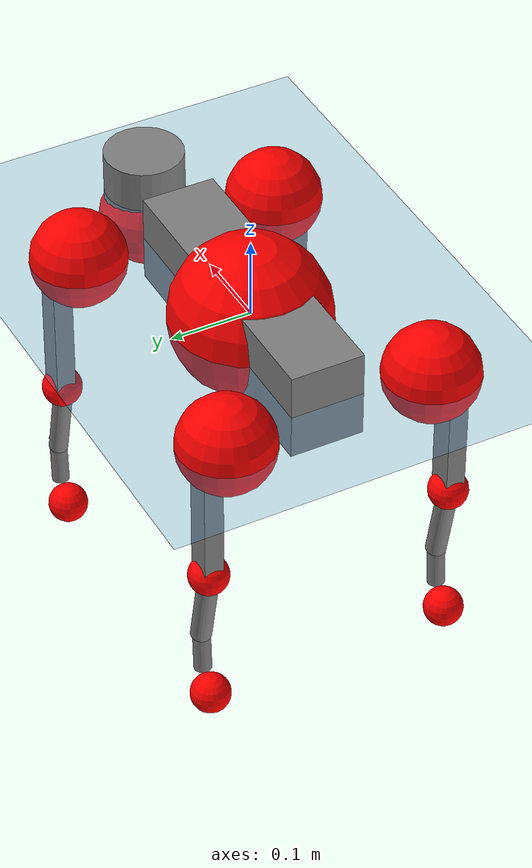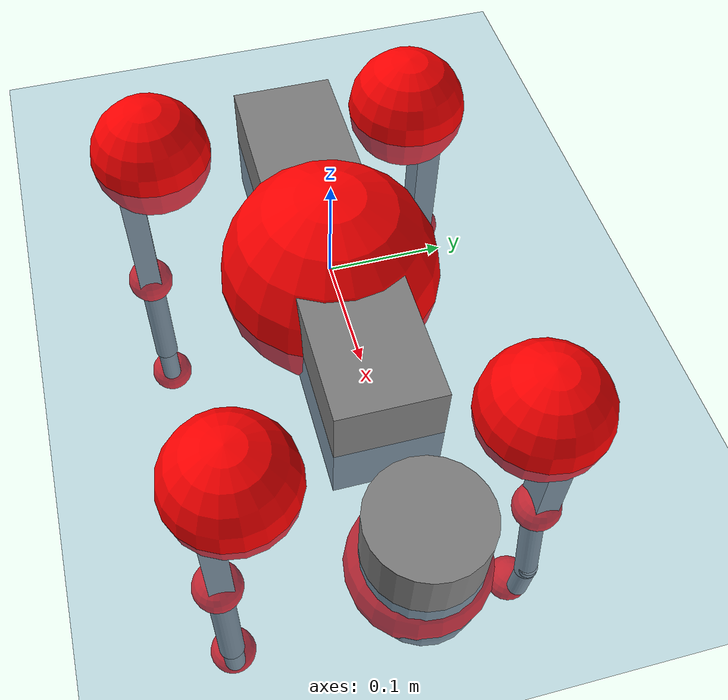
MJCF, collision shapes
<mujoco model="go2">
  <compiler angle="radian" assetdir="assets" balanceinertia="true" inertiafromgeom="false"/>

  <option timestep="0.005" density="1.2" viscosity="2e-05"/>

  <size nkey="1"/>

  <visual>
    <quality shadowsize="8192"/>
    <map shadowclip="0.5"/>
  </visual>

  <default>
    <default class="/">
      <geom contype="0" conaffinity="0" group="1" solref="-1000 -80"/>
      <site size="0.01 0.005 0.005" group="5"/>
      <general forcelimited="true" biastype="affine" gainprm="20" biasprm="0 -20 -0.5"/>
      <default class="go2">
        <joint armature="0.01" damping="0.01" frictionloss="0.2"/>
        <geom condim="1" margin="0.001"/>
        <default class="visual">
          <geom type="mesh" group="2"/>
        </default>
        <default class="collision">
          <geom group="3"/>
          <default class="foot">
            <geom size="0.022 0 0" condim="6" priority="1" friction="0.8 0.02 0.01" solimp="0.015 1 0.022"/>
          </default>
        </default>
        <default class="reward_collision_sphere">
          <geom group="5" rgba="1 0 0 1"/>
        </default>
      </default>
    </default>
  </default>

  <asset>
    <texture type="skybox" colorspace="auto" name="//unnamed_texture_0" builtin="gradient" rgb1="0.95 0.95 0.95" rgb2="0.95 0.95 0.95" width="100" height="600"/>
    <texture type="2d" colorspace="auto" name="texplane" builtin="checker" rgb1="0.345 0.575 0.748" rgb2="0.345 0.575 0.748" markrgb="1 1 1" width="512" height="512"/>
    <material name="MatPlane" class="/" texture="texplane" texuniform="true" texrepeat="2 2" specular="0.9"/>
    <material name="metal" class="/" rgba="0.9 0.95 0.95 1"/>
    <material name="black" class="/" rgba="0 0 0 1"/>
    <material name="white" class="/"/>
    <material name="gray" class="/" rgba="0.671705 0.692426 0.77427 1"/>
    <mesh name="base_0" class="/" file="base_0.obj"/>
    <mesh name="base_1" class="/" file="base_1.obj"/>
    <mesh name="base_2" class="/" file="base_2.obj"/>
    <mesh name="base_3" class="/" file="base_3.obj"/>
    <mesh name="base_4" class="/" file="base_4.obj"/>
    <mesh name="hip_0" class="/" file="hip_0.obj"/>
    <mesh name="hip_1" class="/" file="hip_1.obj"/>
    <mesh name="thigh_0" class="/" file="thigh_0.obj"/>
    <mesh name="thigh_1" class="/" file="thigh_1.obj"/>
    <mesh name="thigh_mirror_0" class="/" file="thigh_mirror_0.obj"/>
    <mesh name="thigh_mirror_1" class="/" file="thigh_mirror_1.obj"/>
    <mesh name="calf_0" class="/" file="calf_0.obj"/>
    <mesh name="calf_1" class="/" file="calf_1.obj"/>
    <mesh name="calf_mirror_0" class="/" file="calf_mirror_0.obj"/>
    <mesh name="calf_mirror_1" class="/" file="calf_mirror_1.obj"/>
    <mesh name="foot" class="/" file="foot.obj"/>
  </asset>

  <worldbody>
    <geom name="floor" class="/" size="100 100 0.125" type="plane" group="0" material="MatPlane"/>
    <light name="toplight_shadow" class="/" pos="0 0 5" dir="0.0990148 0.0990148 -0.990148" type="directional" ambient="0.04 0.04 0.04" diffuse="0.55 0.55 0.55" specular="0.12 0.12 0.12"/>
    <light name="toplight_fill" class="/" pos="0 0 5" dir="0.0990148 0.0990148 -0.990148" type="directional" castshadow="false" ambient="0.04 0.04 0.04" diffuse="0.3 0.3 0.3" specular="0.08 0.08 0.08"/>
    <body name="trunk" childclass="go2" pos="0.000323638 -0.00019272 -0.001333" quat="1 2.79708e-05 2.37941e-06 1.54841e-05">
      <inertial pos="0.0180165 -0.00243899 -0.00506771" quat="-0.00287391 0.710769 -0.0020912 0.703416" mass="6.23977" diaginertia="0.0850179 0.156577 0.0118369"/>
      <joint name="//unnamed_joint_0" type="free" armature="0" damping="0" frictionloss="0"/>
      <geom name="//unnamed_geom_1" class="visual" material="black" mesh="base_0"/>
      <geom name="//unnamed_geom_2" class="visual" material="black" mesh="base_1"/>
      <geom name="//unnamed_geom_3" class="visual" material="black" mesh="base_2"/>
      <geom name="//unnamed_geom_4" class="visual" material="white" mesh="base_3"/>
      <geom name="//unnamed_geom_5" class="visual" material="gray" mesh="base_4"/>
      <geom name="trunk_1" class="collision" size="0.182035 0.0452426 0.0551621" type="box"/>
      <geom name="trunk_2" class="collision" size="0.0483878 0.043549" pos="0.27091 0 0.00860456" type="cylinder"/>
      <geom name="trunk_3" class="collision" size="0.0454845" pos="0.278515 0 -0.0516273"/>
      <geom name="//unnamed_geom_9" class="reward_collision_sphere" size="0.0967756"/>
      <geom name="//unnamed_geom_10" class="reward_collision_sphere" size="0.0580653" pos="0.266158 0 -0.0387205"/>
      <site name="imu" pos="-0.0375152 0.00138083 0.0481736" size="0.00967756"/>
      <camera name="track" pos="0 -2.1845 0" quat="0.707107 0.707107 0 0" mode="trackcom"/>
      <camera name="ego_camera" pos="0.296576 0 0.0387205" quat="-0.5 -0.5 0.5 0.5"/>
      <body name="FL_hip" pos="0.182862 0.0518585 0.000734147" quat="1 -3.53581e-05 1.23577e-05 -0.000111722">
        <inertial pos="-0.00266748 0.00243441 -0.000710397" quat="0.498659 0.497296 0.50704 0.496936" mass="0.59187" diaginertia="0.000660221 0.000922985 0.00022226"/>
        <joint name="FL_hip_joint" pos="0 0 0" axis="0.999918 0.00757572 0.0103496" stiffness="0.00656021" range="-1.05772 1.05705" armature="0.0109245" damping="0.00242889" frictionloss="0.200345"/>
        <geom name="//unnamed_geom_11" class="visual" material="metal" mesh="hip_0"/>
        <geom name="//unnamed_geom_12" class="visual" material="gray" mesh="hip_1"/>
        <geom name="//unnamed_geom_13" class="collision" size="0.0445168 0.0193551" pos="0 0.0873799 0" quat="0.707107 0.707107 0 0" type="cylinder"/>
        <geom name="//unnamed_geom_14" class="reward_collision_sphere" size="0.0580653" pos="0 0.0764574 0"/>
        <body name="FL_thigh" pos="-0.000333498 0.10602 0.00247238" quat="1 0.000176797 -0.000779951 0.000240681">
          <inertial pos="-0.00422656 -0.0245577 -0.0256378" quat="0.827844 0.0894003 -0.0208221 0.553398" mass="1.06109" diaginertia="0.00450387 0.00914604 0.00042067"/>
          <joint name="FL_thigh_joint" pos="0 0 0" axis="-0.000897912 0.999996 0.00270546" range="-1.5488 3.46802" armature="0.0094097" damping="0.0152026" frictionloss="0.170743"/>
          <geom name="//unnamed_geom_15" class="visual" material="metal" mesh="thigh_0"/>
          <geom name="//unnamed_geom_16" class="visual" material="gray" mesh="thigh_1"/>
          <geom name="//unnamed_geom_17" class="collision" size="0.103066 0.011855 0.0164518" pos="0 0 -0.0916385" quat="0.707107 0 0.707107 0" type="box"/>
          <body name="FL_calf" pos="0.00144051 -0.00235243 -0.186236" quat="0.999999 -0.000372077 0.000926892 -0.000121601">
            <inertial pos="0.00710956 -0.000352648 -0.120029" quat="0.713811 -0.000888818 -0.00314229 0.700331" mass="0.216514" diaginertia="0.0011536 0.00226308 2.52604e-05"/>
            <joint name="FL_calf_joint" pos="0 0 0" axis="-0.00343442 0.999991 -0.0024291" stiffness="0.00196919" range="-2.74736 -0.850234" armature="0.009732" damping="0" frictionloss="0.202667"/>
            <geom name="//unnamed_geom_18" class="visual" material="gray" mesh="calf_0"/>
            <geom name="//unnamed_geom_19" class="visual" material="black" mesh="calf_1"/>
            <geom name="FL_calf0" class="collision" size="0.0116131 0.0580653" pos="0.0076045 0 -0.0516273" quat="0.994493 0 -0.104807 0" type="cylinder"/>
            <geom name="//unnamed_geom_21" class="collision" size="0.0106453 0.0314521" pos="0.0190113 0 -0.127347" quat="0.999688 0 0.0249974 0" type="cylinder"/>
            <geom name="//unnamed_geom_22" class="visual" pos="0 0 -0.183277" quat="1 0 0 0" material="black" mesh="foot"/>
            <geom name="FL_foot" class="foot" size="0.0179993" pos="-0.00190113 0 -0.183277"/>
            <geom name="//unnamed_geom_24" class="reward_collision_sphere" size="0.0241939"/>
            <geom name="//unnamed_geom_25" class="reward_collision_sphere" size="0.0241939" pos="-0.00190113 0 -0.183277"/>
            <site name="FL_foot" class="foot" pos="-0.00190113 0 -0.183277" size="0.00967756"/>
          </body>
        </body>
      </body>
      <body name="FR_hip" pos="0.18345 -0.0500913 0.00117811" quat="1 -4.66964e-05 -0.000142213 4.91735e-05">
        <inertial pos="-0.00267218 -0.00228052 8.82175e-05" quat="0.498357 0.505268 0.498922 0.497414" mass="0.629068" diaginertia="0.000696586 0.000941853 0.000228956"/>
        <joint name="FR_hip_joint" pos="0 0 0" axis="0.99999 -0.000311597 0.0044032" stiffness="0.00493635" range="-1.09855 1.04378" armature="0.00856536" damping="0.0190051" frictionloss="0.170595"/>
        <geom name="//unnamed_geom_26" class="visual" pos="0 2.01928e-09 8.66111e-08" quat="4.63268e-05 1 0 0" material="metal" mesh="hip_0"/>
        <geom name="//unnamed_geom_27" class="visual" pos="0 3.2735e-09 -2.14222e-07" quat="4.63268e-05 1 0 0" material="gray" mesh="hip_1"/>
        <geom name="//unnamed_geom_28" class="collision" size="0.0445168 0.0193551" pos="0 -0.0873799 0" quat="0.707107 0.707107 0 0" type="cylinder"/>
        <geom name="//unnamed_geom_29" class="reward_collision_sphere" size="0.0580653" pos="0 -0.0764574 0"/>
        <body name="FR_thigh" pos="0.000756882 -0.101577 -0.000659313" quat="1 3.6745e-05 -0.000229101 -3.5253e-05">
          <inertial pos="-0.0033471 0.0242209 -0.0283212" quat="0.558591 -0.0275124 0.0836111 0.82476" mass="0.988531" diaginertia="0.00453194 0.00898442 0.000404322"/>
          <joint name="FR_thigh_joint" pos="0 0 0" axis="0.00919239 -0.999946 -0.00481696" stiffness="0.00292133" range="-3.43858 1.59337" armature="0.00985849" damping="0" frictionloss="0.218938"/>
          <geom name="//unnamed_geom_30" class="visual" material="metal" mesh="thigh_mirror_0"/>
          <geom name="//unnamed_geom_31" class="visual" material="gray" mesh="thigh_mirror_1"/>
          <geom name="//unnamed_geom_32" class="collision" size="0.103066 0.011855 0.0164518" pos="0 0 -0.0916385" quat="0.707107 0 0.707107 0" type="box"/>
          <body name="FR_calf" pos="0.0022049 -0.00262413 -0.183769" quat="1 3.16786e-05 -1.92317e-05 -0.000252389">
            <inertial pos="0.00629632 0.000184067 -0.119375" quat="0.702591 -0.00256476 0.00302413 0.711582" mass="0.2194" diaginertia="0.00111575 0.00221412 2.51792e-05"/>
            <joint name="FR_calf_joint" pos="0 0 0" axis="0.00219138 -0.999995 0.0021687" range="0.824099 2.74501" armature="0.0101636" damping="0.00800867" frictionloss="0.168422"/>
            <geom name="//unnamed_geom_33" class="visual" material="gray" mesh="calf_mirror_0"/>
            <geom name="//unnamed_geom_34" class="visual" material="black" mesh="calf_mirror_1"/>
            <geom name="FR_calf0" class="collision" size="0.0125808 0.0580653" pos="0.00950563 0 -0.0516273" quat="0.995004 0 -0.0998334 0" type="cylinder"/>
            <geom name="//unnamed_geom_36" class="collision" size="0.0106453 0.0314521" pos="0.0190113 0 -0.127347" quat="0.999688 0 0.0249974 0" type="cylinder"/>
            <geom name="//unnamed_geom_37" class="visual" pos="0 0 -0.183277" quat="1 0 0 0" material="black" mesh="foot"/>
            <geom name="FR_foot" class="foot" size="0.020321" pos="-0.00190113 0 -0.183277"/>
            <geom name="//unnamed_geom_39" class="reward_collision_sphere" size="0.0241939"/>
            <geom name="//unnamed_geom_40" class="reward_collision_sphere" size="0.0241939" pos="-0.00190113 0 -0.183277"/>
            <site name="FR_foot" class="foot" pos="-0.00190113 0 -0.183277" size="0.00967756"/>
          </body>
        </body>
      </body>
      <body name="RL_hip" pos="-0.186431 0.0509258 -7.47369e-05" quat="1 -3.83508e-05 7.21573e-05 6.4222e-05">
        <inertial pos="0.00470475 0.00498815 0.000667516" quat="0.506246 0.500196 0.497375 0.496121" mass="0.610056" diaginertia="0.000674627 0.000930472 0.000213679"/>
        <joint name="RL_hip_joint" pos="0 0 0" axis="-0.999917 -0.011734 0.00539702" stiffness="0.00484485" range="-1.06542 0.993914" armature="0.00839212" damping="0.002502" frictionloss="0.188757"/>
        <geom name="//unnamed_geom_41" class="visual" pos="-7.84974e-10 0 -1.53873e-07" quat="4.63268e-05 0 1 0" material="metal" mesh="hip_0"/>
        <geom name="//unnamed_geom_42" class="visual" pos="-1.27254e-09 0 -1.36463e-07" quat="4.63268e-05 0 1 0" material="gray" mesh="hip_1"/>
        <geom name="//unnamed_geom_43" class="collision" size="0.0445168 0.0193551" pos="0 0.0873799 0" quat="0.707107 0.707107 0 0" type="cylinder"/>
        <geom name="//unnamed_geom_44" class="reward_collision_sphere" size="0.0580653" pos="0 0.0764574 0"/>
        <body name="RL_thigh" pos="-0.000912886 0.100985 0.00063533" quat="1 -1.86357e-08 -4.17372e-06 3.23643e-06">
          <inertial pos="-0.00336184 -0.0220528 -0.0279328" quat="0.828782 0.0850664 -0.0217204 0.552641" mass="1.0451" diaginertia="0.00462779 0.00901244 0.000409794"/>
          <joint name="RL_thigh_joint" pos="0 0 0" axis="0.00519753 0.999949 0.00870526" stiffness="0.00786358" range="-0.523188 4.54152" armature="0.00964292" damping="0.00265878" frictionloss="0.1854"/>
          <geom name="//unnamed_geom_45" class="visual" material="metal" mesh="thigh_0"/>
          <geom name="//unnamed_geom_46" class="visual" material="gray" mesh="thigh_1"/>
          <geom name="//unnamed_geom_47" class="collision" size="0.103066 0.011855 0.0164518" pos="0 0 -0.0916385" quat="0.707107 0 0.707107 0" type="box"/>
          <body name="RL_calf" pos="-0.000593388 -0.00074846 -0.182704" quat="1 0.000232526 -0.000176297 -0.000305632">
            <inertial pos="0.00580849 -0.000790144 -0.122104" quat="0.716516 -0.00583665 -0.0113348 0.697455" mass="0.217741" diaginertia="0.00115921 0.00226391 2.41372e-05"/>
            <joint name="RL_calf_joint" pos="0 0 0" axis="0.00805784 0.999967 0.000778106" range="-2.72145 -0.838581" armature="0.00887991" damping="0.00391194" frictionloss="0.204189"/>
            <geom name="//unnamed_geom_48" class="visual" material="gray" mesh="calf_0"/>
            <geom name="//unnamed_geom_49" class="visual" material="black" mesh="calf_1"/>
            <geom name="RL_calf0" class="collision" size="0.0125808 0.0580653" pos="0.00950563 0 -0.0516273" quat="0.995004 0 -0.0998334 0" type="cylinder"/>
            <geom name="//unnamed_geom_51" class="collision" size="0.0106453 0.0314521" pos="0.0190113 0 -0.127347" quat="0.999688 0 0.0249974 0" type="cylinder"/>
            <geom name="//unnamed_geom_52" class="visual" pos="0 0 -0.183277" quat="1 0 0 0" material="black" mesh="foot"/>
            <geom name="RL_foot" class="foot" size="0.0189214" pos="-0.00190113 0 -0.183277"/>
            <geom name="//unnamed_geom_54" class="reward_collision_sphere" size="0.0241939"/>
            <geom name="//unnamed_geom_55" class="reward_collision_sphere" size="0.0241939" pos="-0.00190113 0 -0.183277"/>
            <site name="RL_foot" class="foot" pos="-0.00190113 0 -0.183277" size="0.00967756"/>
          </body>
        </body>
      </body>
      <body name="RR_hip" pos="-0.183455 -0.0541405 -0.000220335" quat="1 0.000514962 0.000266391 -0.000741591">
        <inertial pos="0.0025587 -0.00205097 0.00219122" quat="0.496861 0.494561 0.499007 0.509441" mass="0.614038" diaginertia="0.000683059 0.000926802 0.000218948"/>
        <joint name="RR_hip_joint" pos="0 0 0" axis="-0.999999 0.000981115 0.00098919" range="-1.08831 1.09917" armature="0.00960675" damping="0" frictionloss="0.191787"/>
        <geom name="//unnamed_geom_56" class="visual" pos="7.89879e-10 2.01928e-09 -2.40484e-07" quat="2.14617e-09 4.63268e-05 4.63268e-05 -1" material="metal" mesh="hip_0"/>
        <geom name="//unnamed_geom_57" class="visual" pos="1.2604e-09 3.2735e-09 7.7759e-08" quat="2.14617e-09 4.63268e-05 4.63268e-05 -1" material="gray" mesh="hip_1"/>
        <geom name="//unnamed_geom_58" class="collision" size="0.0445168 0.0193551" pos="0 -0.0873799 0" quat="0.707107 0.707107 0 0" type="cylinder"/>
        <geom name="//unnamed_geom_59" class="reward_collision_sphere" size="0.0580653" pos="0 -0.0764574 0"/>
        <body name="RR_thigh" pos="9.12764e-05 -0.104982 0.00154154" quat="1 -9.81697e-05 -0.000250931 -2.8347e-05">
          <inertial pos="-0.00203104 0.025324 -0.0289224" quat="0.551508 -0.0202434 0.0848389 0.829597" mass="0.976605" diaginertia="0.00434134 0.00883095 0.000396131"/>
          <joint name="RR_thigh_joint" pos="0 0 0" axis="-0.0158111 -0.999856 0.00609049" range="-4.52872 0.524042" armature="0.00996439" damping="0.0196582" frictionloss="0.190486"/>
          <geom name="//unnamed_geom_60" class="visual" material="metal" mesh="thigh_mirror_0"/>
          <geom name="//unnamed_geom_61" class="visual" material="gray" mesh="thigh_mirror_1"/>
          <geom name="//unnamed_geom_62" class="collision" size="0.103066 0.011855 0.0164518" pos="0 0 -0.0916385" quat="0.707107 0 0.707107 0" type="box"/>
          <body name="RR_calf" pos="-0.00193051 0.000670938 -0.185219" quat="1 -4.72508e-05 -6.29217e-05 -1.22463e-05">
            <inertial pos="0.00641939 0.000866243 -0.121168" quat="0.702781 0.00549625 -0.00242344 0.711381" mass="0.219897" diaginertia="0.00115656 0.00234717 2.53577e-05"/>
            <joint name="RR_calf_joint" pos="0 0 0" axis="0.00489294 -0.999987 0.00106777" stiffness="0.00670252" range="0.847241 2.74608" armature="0.00840577" damping="0.00541808" frictionloss="0.192911"/>
            <geom name="//unnamed_geom_63" class="visual" material="gray" mesh="calf_mirror_0"/>
            <geom name="//unnamed_geom_64" class="visual" material="black" mesh="calf_mirror_1"/>
            <geom name="RR_calf0" class="collision" size="0.0125808 0.0580653" pos="0.00950563 0 -0.0516273" quat="0.995004 0 -0.0998334 0" type="cylinder"/>
            <geom name="//unnamed_geom_66" class="collision" size="0.0106453 0.0314521" pos="0.0190113 0 -0.127347" quat="0.999688 0 0.0249974 0" type="cylinder"/>
            <geom name="//unnamed_geom_67" class="visual" pos="0 0 -0.183277" quat="1 0 0 0" material="black" mesh="foot"/>
            <geom name="RR_foot" class="foot" size="0.0210194" pos="-0.00190113 0 -0.183277"/>
            <geom name="//unnamed_geom_69" class="reward_collision_sphere" size="0.0241939"/>
            <geom name="//unnamed_geom_70" class="reward_collision_sphere" size="0.0241939" pos="-0.00190113 0 -0.183277"/>
            <site name="RR_foot" class="foot" pos="-0.00190113 0 -0.183277" size="0.00967756"/>
          </body>
        </body>
      </body>
    </body>
  </worldbody>

  <contact>
    <pair class="/" geom1="floor" geom2="FL_foot" name="//unnamed_contact_0"/>
    <pair class="/" geom1="floor" geom2="FR_foot" name="//unnamed_contact_1"/>
    <pair class="/" geom1="floor" geom2="RL_foot" name="//unnamed_contact_2"/>
    <pair class="/" geom1="floor" geom2="RR_foot" name="//unnamed_contact_3"/>
  </contact>

  <actuator>
    <general name="FL_hip" class="/" joint="FL_hip_joint" forcerange="-23.3617 23.3617" gainprm="18.9587" biasprm="0 -18.9587 -0.497623"/>
    <general name="FL_thigh" class="/" joint="FL_thigh_joint" forcerange="-22.4682 22.4682" gainprm="18.9587" biasprm="0 -18.9587 -0.497623"/>
    <general name="FL_calf" class="/" joint="FL_calf_joint" forcerange="-45.492 45.492" gainprm="18.9587" biasprm="0 -18.9587 -0.497623"/>
    <general name="FR_hip" class="/" joint="FR_hip_joint" forcerange="-22.1833 22.1833" gainprm="18.9587" biasprm="0 -18.9587 -0.497623"/>
    <general name="FR_thigh" class="/" joint="FR_thigh_joint" forcerange="-22.722 22.722" gainprm="18.9587" biasprm="0 -18.9587 -0.497623"/>
    <general name="FR_calf" class="/" joint="FR_calf_joint" forcerange="-39.9122 39.9122" gainprm="18.9587" biasprm="0 -18.9587 -0.497623"/>
    <general name="RL_hip" class="/" joint="RL_hip_joint" forcerange="-22.8729 22.8729" gainprm="18.9587" biasprm="0 -18.9587 -0.497623"/>
    <general name="RL_thigh" class="/" joint="RL_thigh_joint" forcerange="-20.9491 20.9491" gainprm="18.9587" biasprm="0 -18.9587 -0.497623"/>
    <general name="RL_calf" class="/" joint="RL_calf_joint" forcerange="-45.5784 45.5784" gainprm="18.9587" biasprm="0 -18.9587 -0.497623"/>
    <general name="RR_hip" class="/" joint="RR_hip_joint" forcerange="-23.701 23.701" gainprm="18.9587" biasprm="0 -18.9587 -0.497623"/>
    <general name="RR_thigh" class="/" joint="RR_thigh_joint" forcerange="-20.6777 20.6777" gainprm="18.9587" biasprm="0 -18.9587 -0.497623"/>
    <general name="RR_calf" class="/" joint="RR_calf_joint" forcerange="-47.7759 47.7759" gainprm="18.9587" biasprm="0 -18.9587 -0.497623"/>
  </actuator>

  <sensor>
    <gyro site="imu" name="imu_angular_velocity"/>
    <velocimeter site="imu" name="imu_linear_velocity"/>
    <framelinvel objtype="site" objname="FL_foot" name="FL_foot_global_linear_velocity"/>
    <framelinvel objtype="site" objname="FR_foot" name="FR_foot_global_linear_velocity"/>
    <framelinvel objtype="site" objname="RL_foot" name="RL_foot_global_linear_velocity"/>
    <framelinvel objtype="site" objname="RR_foot" name="RR_foot_global_linear_velocity"/>
  </sensor>

  <keyframe>
    <key name="home" qpos="0 0 0.325 1 0 0 0 0.1 0.8 -1.5 -0.1 -0.8 1.5 -0.1 0.8 -1.5 0.1 -0.8 1.5"/>
  </keyframe>
</mujoco>
